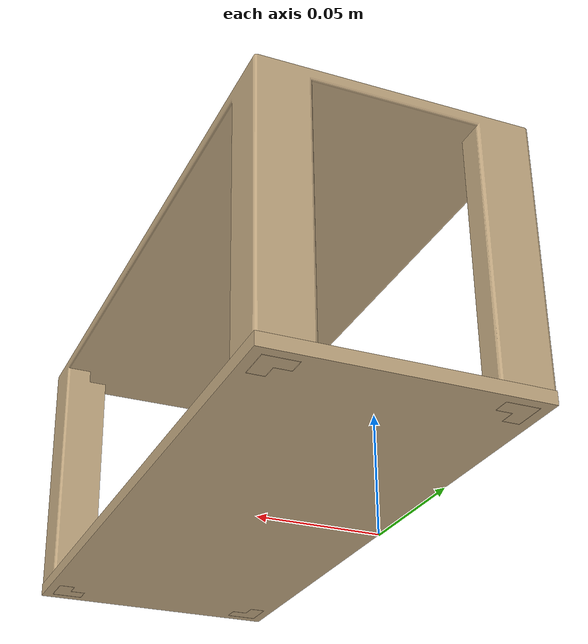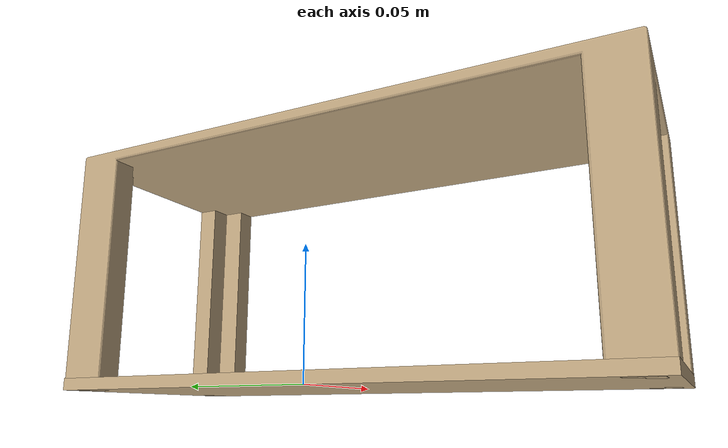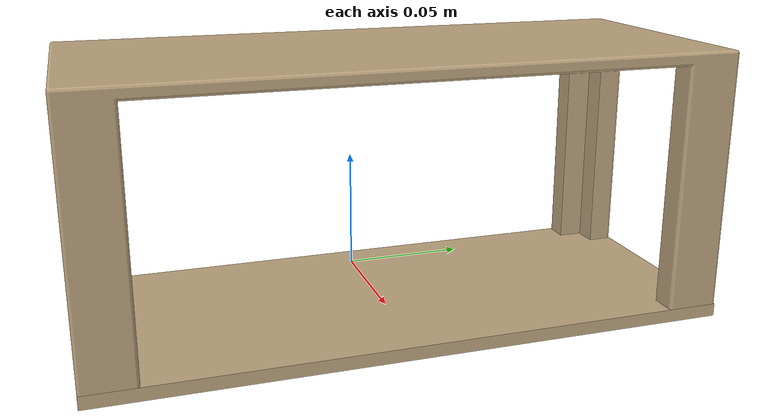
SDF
<?xml version="1.0"?>
<sdf version="1.8">
  <model name="shelf">
    <static>true</static>

    <link name="link">

      <visual name="top_visual">
        <pose>0.1 0.0 0.1025 0 0 1.57</pose>
        <geometry>
          <mesh>
            <uri>model://shelf/meshes/ver2_top.stl</uri>
            <scale>0.001 0.001 0.001</scale>
          </mesh>
        </geometry>
        <material>
          <ambient>0.75 0.65 0.50 1</ambient>
          <diffuse>0.75 0.65 0.50 1</diffuse>
          <specular>0.05 0.05 0.05 1</specular>
        </material>
      </visual>

      <visual name="bottom_visual">
        <pose>0.1 0.0 0.1025 0 0 1.57</pose>
        <geometry>
          <mesh>
            <uri>model://shelf/meshes/ver2_bottom.stl</uri>
            <scale>0.001 0.001 0.001</scale>
          </mesh>
        </geometry>
        <material>
          <ambient>0.75 0.65 0.50 1</ambient>
          <diffuse>0.75 0.65 0.50 1</diffuse>
          <specular>0.05 0.05 0.05 1</specular>
        </material>
      </visual>

      <!--
        단순 box 충돌: 시각 mesh 가 차지하는 link 좌표 영역과 정확히 일치
          중심 (0.05, 0, 0.0525), 크기 (0.100, 0.240, 0.105)
          상면 z = 0.105 (시각 mesh 의 top board 상면과 일치)
      -->
      <collision name="shelf_collision">
        <pose>0.05 0.0 0.0525 0 0 0</pose>
        <geometry>
          <box>
            <size>0.100 0.240 0.105</size>
          </box>
        </geometry>
        <surface>
          <friction>
            <ode>
              <mu>0.9</mu>
              <mu2>0.9</mu2>
            </ode>
          </friction>
          <contact>
            <ode>
              <kp>1e6</kp>
              <kd>10</kd>
            </ode>
          </contact>
        </surface>
      </collision>

    </link>
  </model>
</sdf>
